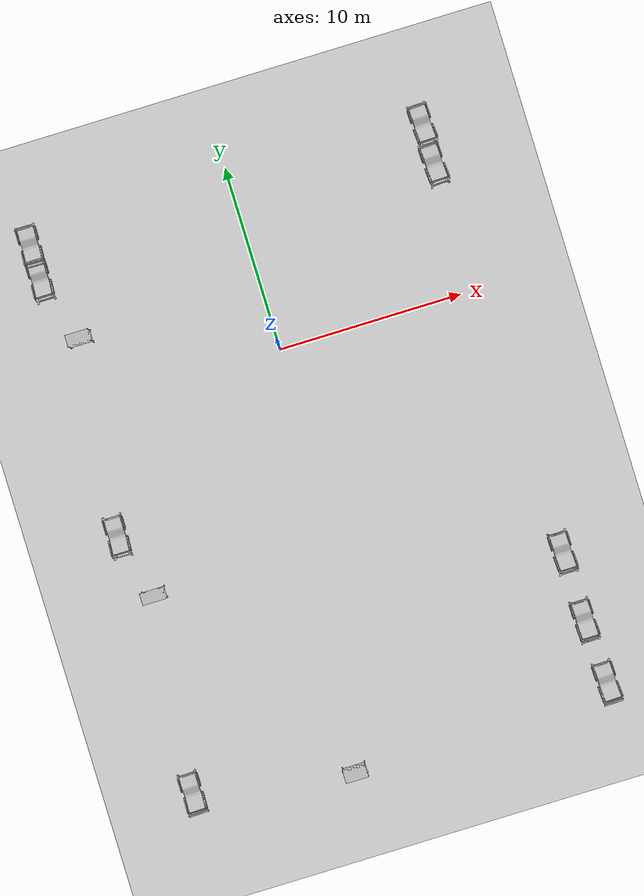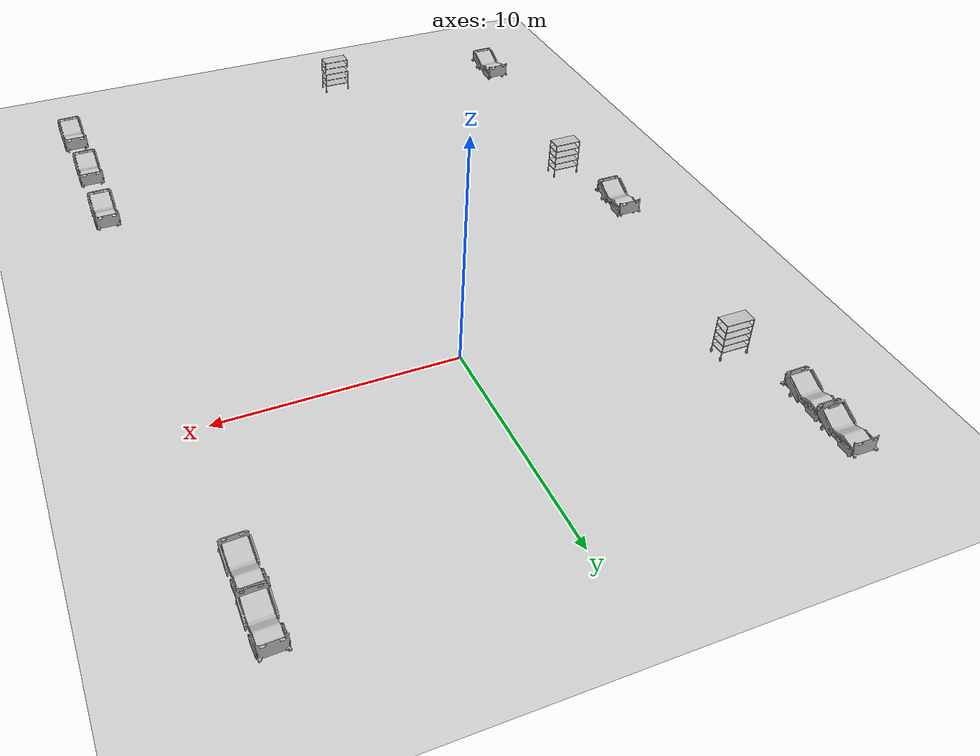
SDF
<sdf version="1.6">
 <world name="world">
  <gravity>0 0 -9.8</gravity>
  <physics name="default_physics" default="0" type="ode">
   <max_step_size>0.001</max_step_size>
   <real_time_factor>1</real_time_factor>
   <real_time_update_rate>1000</real_time_update_rate>
  </physics>
  <scene><ambient>0.6 0.6 0.6 1</ambient><background>0.4 0.4 0.4 1</background><shadows>0</shadows></scene>
  <light name="sun" type="directional">
   <pose>0 0 10 0 -0 0</pose>
   <diffuse>0.8 0.8 0.8 1</diffuse>
   <specular>0.2 0.2 0.2 1</specular>
   <attenuation>
    <range>1000</range>
    <constant>0.9</constant>
    <linear>0.01</linear>
    <quadratic>0.001</quadratic>
   </attenuation>
   <direction>-0.5 0.1 -0.9</direction>
  </light>
  <model name="ground_plane">
   <static>1</static>
   <link name="link">
    <collision name="collision">
     <geometry><plane><normal>0 0 1</normal><size>100 100</size></plane></geometry>
     <surface><friction><ode><mu>100</mu><mu2>50</mu2></ode></friction></surface>
    </collision>
    <visual name="visual">
     <cast_shadows>0</cast_shadows>
     <geometry><plane><normal>0 0 1</normal><size>100 100</size></plane></geometry>
     <material>
      <script><uri>file://media/materials/scripts/gazebo.material</uri><name>Gazebo/Grey</name></script>
     </material>
    </visual>
   </link>
   <pose>0 0 -0.1 0 -0 0</pose>
  </model>
  <model name="CGMClassic_1">
   <static>1</static>
   <link name="CGMClassic::body">
    <pose>11.1777 -18.4129 0 0 0 -3.13719</pose>
    <visual name="visual">
     <geometry>
      <mesh><uri>model://CGMClassic/meshes/CGMClassic.obj</uri><scale>0.01 0.01 0.01</scale></mesh>
     </geometry>
    </visual>
    <collision name="collision">
     <geometry>
      <mesh><uri>model://CGMClassic/meshes/CGMClassic.obj</uri><scale>0.01 0.01 0.01</scale></mesh>
     </geometry>
    </collision>
   </link>
  </model>
  <model name="CGMClassic_2">
   <static>1</static>
   <link name="CGMClassic::body">
    <pose>11.1179 -14.6493 0 0 0 -3.13599</pose>
    <visual name="visual">
     <geometry>
      <mesh><uri>model://CGMClassic/meshes/CGMClassic.obj</uri><scale>0.01 0.01 0.01</scale></mesh>
     </geometry>
    </visual>
    <collision name="collision">
     <geometry>
      <mesh><uri>model://CGMClassic/meshes/CGMClassic.obj</uri><scale>0.01 0.01 0.01</scale></mesh>
     </geometry>
    </collision>
   </link>
  </model>
  <model name="CGMClassic_3">
   <static>1</static>
   <link name="CGMClassic::body">
    <pose>-11.2304 -21.1134 0 0 0 -3.11834</pose>
    <visual name="visual">
     <geometry>
      <mesh><uri>model://CGMClassic/meshes/CGMClassic.obj</uri><scale>0.01 0.01 0.01</scale></mesh>
     </geometry>
    </visual>
    <collision name="collision">
     <geometry>
      <mesh><uri>model://CGMClassic/meshes/CGMClassic.obj</uri><scale>0.01 0.01 0.01</scale></mesh>
     </geometry>
    </collision>
   </link>
  </model>
  <model name="CGMClassic_4">
   <static>1</static>
   <link name="CGMClassic::body">
    <pose>-11.0878 -7.00992 0 0 -0 3.1351</pose>
    <visual name="visual">
     <geometry>
      <mesh><uri>model://CGMClassic/meshes/CGMClassic.obj</uri><scale>0.01 0.01 0.01</scale></mesh>
     </geometry>
    </visual>
    <collision name="collision">
     <geometry>
      <mesh><uri>model://CGMClassic/meshes/CGMClassic.obj</uri><scale>0.01 0.01 0.01</scale></mesh>
     </geometry>
    </collision>
   </link>
  </model>
  <model name="CGMClassic_5">
   <static>1</static>
   <link name="CGMClassic::body">
    <pose>-11.0106 8.9505 -0.008203 -0.035019 -0.000392 3.13388</pose>
    <visual name="visual">
     <geometry>
      <mesh><uri>model://CGMClassic/meshes/CGMClassic.obj</uri><scale>0.01 0.01 0.01</scale></mesh>
     </geometry>
    </visual>
    <collision name="collision">
     <geometry>
      <mesh><uri>model://CGMClassic/meshes/CGMClassic.obj</uri><scale>0.01 0.01 0.01</scale></mesh>
     </geometry>
    </collision>
   </link>
  </model>
  <model name="CGMClassic_6">
   <static>1</static>
   <link name="CGMClassic::body">
    <pose>-11.025 7.10335 0 -0.035021 1.8e-05 -3.13762</pose>
    <visual name="visual">
     <geometry>
      <mesh><uri>model://CGMClassic/meshes/CGMClassic.obj</uri><scale>0.01 0.01 0.01</scale></mesh>
     </geometry>
    </visual>
    <collision name="collision">
     <geometry>
      <mesh><uri>model://CGMClassic/meshes/CGMClassic.obj</uri><scale>0.01 0.01 0.01</scale></mesh>
     </geometry>
    </collision>
   </link>
  </model>
  <model name="StorageRack_2">
   <link name="StorageRack::link">
    <pose>-2.69866 -22.4178 -8e-06 0 4e-06 0</pose>
    <visual name="visual">
     <geometry><mesh><uri>model://StorageRack/meshes/StorageRack.obj</uri></mesh></geometry>
    </visual>
    <collision name="collision">
     <geometry><mesh><uri>model://StorageRack/meshes/StorageRack.obj</uri></mesh></geometry>
    </collision>
   </link>
   <static>1</static>
  </model>
  <model name="CGMClassic_7">
   <static>1</static>
   <link name="CGMClassic::body">
    <pose>10.6166 9.06291 -0.008203 -0.03501 0.000885 -3.11285</pose>
    <visual name="visual">
     <geometry>
      <mesh><uri>model://CGMClassic/meshes/CGMClassic.obj</uri><scale>0.01 0.01 0.01</scale></mesh>
     </geometry>
    </visual>
    <collision name="collision">
     <geometry>
      <mesh><uri>model://CGMClassic/meshes/CGMClassic.obj</uri><scale>0.01 0.01 0.01</scale></mesh>
     </geometry>
    </collision>
   </link>
  </model>
  <model name="CGMClassic_8">
   <static>1</static>
   <link name="CGMClassic::body">
    <pose>10.6006 6.90956 -0.008203 -0.035003 0.001133 -3.10576</pose>
    <visual name="visual">
     <geometry>
      <mesh><uri>model://CGMClassic/meshes/CGMClassic.obj</uri><scale>0.01 0.01 0.01</scale></mesh>
     </geometry>
    </visual>
    <collision name="collision">
     <geometry>
      <mesh><uri>model://CGMClassic/meshes/CGMClassic.obj</uri><scale>0.01 0.01 0.01</scale></mesh>
     </geometry>
    </collision>
   </link>
  </model>
  <model name="CGMClassic_9">
   <static>1</static>
   <link name="CGMClassic::body">
    <pose>11.3613 -21.8867 0 0 0 -3.12292</pose>
    <visual name="visual">
     <geometry>
      <mesh><uri>model://CGMClassic/meshes/CGMClassic.obj</uri><scale>0.01 0.01 0.01</scale></mesh>
     </geometry>
    </visual>
    <collision name="collision">
     <geometry>
      <mesh><uri>model://CGMClassic/meshes/CGMClassic.obj</uri><scale>0.01 0.01 0.01</scale></mesh>
     </geometry>
    </collision>
   </link>
  </model>
  <model name="StorageRack_3">
   <link name="StorageRack::link">
    <pose>-10.1178 -10.4694 0 0 -0 0</pose>
    <visual name="visual">
     <geometry><mesh><uri>model://StorageRack/meshes/StorageRack.obj</uri></mesh></geometry>
    </visual>
    <collision name="collision">
     <geometry><mesh><uri>model://StorageRack/meshes/StorageRack.obj</uri></mesh></geometry>
    </collision>
   </link>
   <static>1</static>
  </model>
  <model name="StorageRack_4">
   <link name="StorageRack::link">
    <pose>-9.91557 3.5644 -9e-06 1e-06 1e-06 -0.000273</pose>
    <visual name="visual">
     <geometry><mesh><uri>model://StorageRack/meshes/StorageRack.obj</uri></mesh></geometry>
    </visual>
    <collision name="collision">
     <geometry><mesh><uri>model://StorageRack/meshes/StorageRack.obj</uri></mesh></geometry>
    </collision>
   </link>
   <static>1</static>
  </model>
  <magnetic_field>6e-06 2.3e-05 -4.2e-05</magnetic_field>
  <atmosphere type="adiabatic"/>
  <spherical_coordinates>
   <surface_model>EARTH_WGS84</surface_model>
   <latitude_deg>0</latitude_deg>
   <longitude_deg>0</longitude_deg>
   <elevation>0</elevation>
   <heading_deg>0</heading_deg>
  </spherical_coordinates>
 </world>
</sdf>
